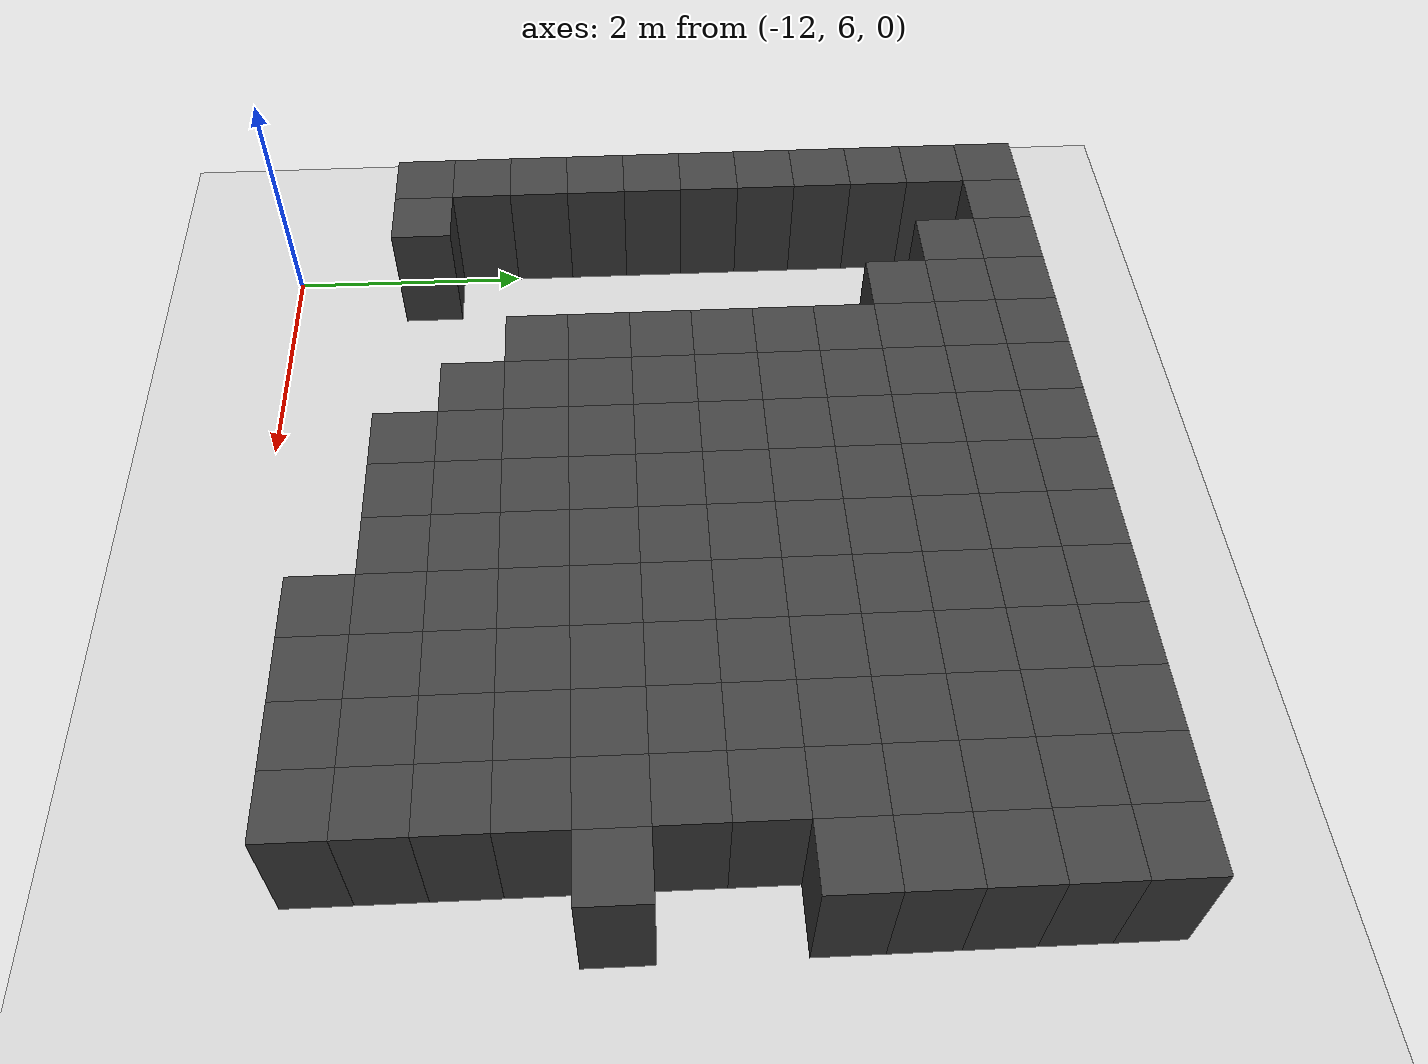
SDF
<sdf version="1.7">
 <world name="map_9082">
  <model name="ground_plane">
   <static>true</static>
   <link name="link">
    <collision name="collision">
     <geometry><plane><normal>0 0 1</normal><size>200 200</size></plane></geometry>
    </collision>
    <visual name="visual">
     <geometry><plane><normal>0 0 1</normal><size>200 200</size></plane></geometry>
     <material><ambient>0.8 0.8 0.8 1</ambient><diffuse>0.8 0.8 0.8 1</diffuse></material>
    </visual>
   </link>
  </model>
  <model name="maze_environment">
   <static>true</static>
   <link name="wall_0">
    <pose>-12.250 12.250 0.500 0 0 0</pose>
    <collision name="col"><geometry><box><size>0.5 0.5 1.0</size></box></geometry></collision>
    <visual name="vis">
     <geometry><box><size>0.5 0.5 1.0</size></box></geometry>
     <material><ambient>0.15 0.15 0.15 1</ambient><diffuse>0.25 0.25 0.25 1</diffuse></material>
    </visual>
   </link>
   <link name="wall_1">
    <pose>-11.750 12.250 0.500 0 0 0</pose>
    <collision name="col"><geometry><box><size>0.5 0.5 1.0</size></box></geometry></collision>
    <visual name="vis">
     <geometry><box><size>0.5 0.5 1.0</size></box></geometry>
     <material><ambient>0.15 0.15 0.15 1</ambient><diffuse>0.25 0.25 0.25 1</diffuse></material>
    </visual>
   </link>
   <link name="wall_2">
    <pose>-11.250 12.250 0.500 0 0 0</pose>
    <collision name="col"><geometry><box><size>0.5 0.5 1.0</size></box></geometry></collision>
    <visual name="vis">
     <geometry><box><size>0.5 0.5 1.0</size></box></geometry>
     <material><ambient>0.15 0.15 0.15 1</ambient><diffuse>0.25 0.25 0.25 1</diffuse></material>
    </visual>
   </link>
   <link name="wall_3">
    <pose>-10.750 12.250 0.500 0 0 0</pose>
    <collision name="col"><geometry><box><size>0.5 0.5 1.0</size></box></geometry></collision>
    <visual name="vis">
     <geometry><box><size>0.5 0.5 1.0</size></box></geometry>
     <material><ambient>0.15 0.15 0.15 1</ambient><diffuse>0.25 0.25 0.25 1</diffuse></material>
    </visual>
   </link>
   <link name="wall_4">
    <pose>-10.250 12.250 0.500 0 0 0</pose>
    <collision name="col"><geometry><box><size>0.5 0.5 1.0</size></box></geometry></collision>
    <visual name="vis">
     <geometry><box><size>0.5 0.5 1.0</size></box></geometry>
     <material><ambient>0.15 0.15 0.15 1</ambient><diffuse>0.25 0.25 0.25 1</diffuse></material>
    </visual>
   </link>
   <link name="wall_5">
    <pose>-9.750 12.250 0.500 0 0 0</pose>
    <collision name="col"><geometry><box><size>0.5 0.5 1.0</size></box></geometry></collision>
    <visual name="vis">
     <geometry><box><size>0.5 0.5 1.0</size></box></geometry>
     <material><ambient>0.15 0.15 0.15 1</ambient><diffuse>0.25 0.25 0.25 1</diffuse></material>
    </visual>
   </link>
   <link name="wall_6">
    <pose>-9.250 12.250 0.500 0 0 0</pose>
    <collision name="col"><geometry><box><size>0.5 0.5 1.0</size></box></geometry></collision>
    <visual name="vis">
     <geometry><box><size>0.5 0.5 1.0</size></box></geometry>
     <material><ambient>0.15 0.15 0.15 1</ambient><diffuse>0.25 0.25 0.25 1</diffuse></material>
    </visual>
   </link>
   <link name="wall_7">
    <pose>-8.750 12.250 0.500 0 0 0</pose>
    <collision name="col"><geometry><box><size>0.5 0.5 1.0</size></box></geometry></collision>
    <visual name="vis">
     <geometry><box><size>0.5 0.5 1.0</size></box></geometry>
     <material><ambient>0.15 0.15 0.15 1</ambient><diffuse>0.25 0.25 0.25 1</diffuse></material>
    </visual>
   </link>
   <link name="wall_8">
    <pose>-8.250 12.250 0.500 0 0 0</pose>
    <collision name="col"><geometry><box><size>0.5 0.5 1.0</size></box></geometry></collision>
    <visual name="vis">
     <geometry><box><size>0.5 0.5 1.0</size></box></geometry>
     <material><ambient>0.15 0.15 0.15 1</ambient><diffuse>0.25 0.25 0.25 1</diffuse></material>
    </visual>
   </link>
   <link name="wall_9">
    <pose>-7.750 12.250 0.500 0 0 0</pose>
    <collision name="col"><geometry><box><size>0.5 0.5 1.0</size></box></geometry></collision>
    <visual name="vis">
     <geometry><box><size>0.5 0.5 1.0</size></box></geometry>
     <material><ambient>0.15 0.15 0.15 1</ambient><diffuse>0.25 0.25 0.25 1</diffuse></material>
    </visual>
   </link>
   <link name="wall_10">
    <pose>-7.250 12.250 0.500 0 0 0</pose>
    <collision name="col"><geometry><box><size>0.5 0.5 1.0</size></box></geometry></collision>
    <visual name="vis">
     <geometry><box><size>0.5 0.5 1.0</size></box></geometry>
     <material><ambient>0.15 0.15 0.15 1</ambient><diffuse>0.25 0.25 0.25 1</diffuse></material>
    </visual>
   </link>
   <link name="wall_11">
    <pose>-6.750 12.250 0.500 0 0 0</pose>
    <collision name="col"><geometry><box><size>0.5 0.5 1.0</size></box></geometry></collision>
    <visual name="vis">
     <geometry><box><size>0.5 0.5 1.0</size></box></geometry>
     <material><ambient>0.15 0.15 0.15 1</ambient><diffuse>0.25 0.25 0.25 1</diffuse></material>
    </visual>
   </link>
   <link name="wall_12">
    <pose>-6.250 12.250 0.500 0 0 0</pose>
    <collision name="col"><geometry><box><size>0.5 0.5 1.0</size></box></geometry></collision>
    <visual name="vis">
     <geometry><box><size>0.5 0.5 1.0</size></box></geometry>
     <material><ambient>0.15 0.15 0.15 1</ambient><diffuse>0.25 0.25 0.25 1</diffuse></material>
    </visual>
   </link>
   <link name="wall_13">
    <pose>-5.750 12.250 0.500 0 0 0</pose>
    <collision name="col"><geometry><box><size>0.5 0.5 1.0</size></box></geometry></collision>
    <visual name="vis">
     <geometry><box><size>0.5 0.5 1.0</size></box></geometry>
     <material><ambient>0.15 0.15 0.15 1</ambient><diffuse>0.25 0.25 0.25 1</diffuse></material>
    </visual>
   </link>
   <link name="wall_50">
    <pose>-12.250 11.750 0.500 0 0 0</pose>
    <collision name="col"><geometry><box><size>0.5 0.5 1.0</size></box></geometry></collision>
    <visual name="vis">
     <geometry><box><size>0.5 0.5 1.0</size></box></geometry>
     <material><ambient>0.15 0.15 0.15 1</ambient><diffuse>0.25 0.25 0.25 1</diffuse></material>
    </visual>
   </link>
   <link name="wall_51">
    <pose>-11.250 11.750 0.500 0 0 0</pose>
    <collision name="col"><geometry><box><size>0.5 0.5 1.0</size></box></geometry></collision>
    <visual name="vis">
     <geometry><box><size>0.5 0.5 1.0</size></box></geometry>
     <material><ambient>0.15 0.15 0.15 1</ambient><diffuse>0.25 0.25 0.25 1</diffuse></material>
    </visual>
   </link>
   <link name="wall_52">
    <pose>-10.750 11.750 0.500 0 0 0</pose>
    <collision name="col"><geometry><box><size>0.5 0.5 1.0</size></box></geometry></collision>
    <visual name="vis">
     <geometry><box><size>0.5 0.5 1.0</size></box></geometry>
     <material><ambient>0.15 0.15 0.15 1</ambient><diffuse>0.25 0.25 0.25 1</diffuse></material>
    </visual>
   </link>
   <link name="wall_53">
    <pose>-10.250 11.750 0.500 0 0 0</pose>
    <collision name="col"><geometry><box><size>0.5 0.5 1.0</size></box></geometry></collision>
    <visual name="vis">
     <geometry><box><size>0.5 0.5 1.0</size></box></geometry>
     <material><ambient>0.15 0.15 0.15 1</ambient><diffuse>0.25 0.25 0.25 1</diffuse></material>
    </visual>
   </link>
   <link name="wall_54">
    <pose>-9.750 11.750 0.500 0 0 0</pose>
    <collision name="col"><geometry><box><size>0.5 0.5 1.0</size></box></geometry></collision>
    <visual name="vis">
     <geometry><box><size>0.5 0.5 1.0</size></box></geometry>
     <material><ambient>0.15 0.15 0.15 1</ambient><diffuse>0.25 0.25 0.25 1</diffuse></material>
    </visual>
   </link>
   <link name="wall_55">
    <pose>-9.250 11.750 0.500 0 0 0</pose>
    <collision name="col"><geometry><box><size>0.5 0.5 1.0</size></box></geometry></collision>
    <visual name="vis">
     <geometry><box><size>0.5 0.5 1.0</size></box></geometry>
     <material><ambient>0.15 0.15 0.15 1</ambient><diffuse>0.25 0.25 0.25 1</diffuse></material>
    </visual>
   </link>
   <link name="wall_56">
    <pose>-8.750 11.750 0.500 0 0 0</pose>
    <collision name="col"><geometry><box><size>0.5 0.5 1.0</size></box></geometry></collision>
    <visual name="vis">
     <geometry><box><size>0.5 0.5 1.0</size></box></geometry>
     <material><ambient>0.15 0.15 0.15 1</ambient><diffuse>0.25 0.25 0.25 1</diffuse></material>
    </visual>
   </link>
   <link name="wall_57">
    <pose>-8.250 11.750 0.500 0 0 0</pose>
    <collision name="col"><geometry><box><size>0.5 0.5 1.0</size></box></geometry></collision>
    <visual name="vis">
     <geometry><box><size>0.5 0.5 1.0</size></box></geometry>
     <material><ambient>0.15 0.15 0.15 1</ambient><diffuse>0.25 0.25 0.25 1</diffuse></material>
    </visual>
   </link>
   <link name="wall_58">
    <pose>-7.750 11.750 0.500 0 0 0</pose>
    <collision name="col"><geometry><box><size>0.5 0.5 1.0</size></box></geometry></collision>
    <visual name="vis">
     <geometry><box><size>0.5 0.5 1.0</size></box></geometry>
     <material><ambient>0.15 0.15 0.15 1</ambient><diffuse>0.25 0.25 0.25 1</diffuse></material>
    </visual>
   </link>
   <link name="wall_59">
    <pose>-7.250 11.750 0.500 0 0 0</pose>
    <collision name="col"><geometry><box><size>0.5 0.5 1.0</size></box></geometry></collision>
    <visual name="vis">
     <geometry><box><size>0.5 0.5 1.0</size></box></geometry>
     <material><ambient>0.15 0.15 0.15 1</ambient><diffuse>0.25 0.25 0.25 1</diffuse></material>
    </visual>
   </link>
   <link name="wall_60">
    <pose>-6.750 11.750 0.500 0 0 0</pose>
    <collision name="col"><geometry><box><size>0.5 0.5 1.0</size></box></geometry></collision>
    <visual name="vis">
     <geometry><box><size>0.5 0.5 1.0</size></box></geometry>
     <material><ambient>0.15 0.15 0.15 1</ambient><diffuse>0.25 0.25 0.25 1</diffuse></material>
    </visual>
   </link>
   <link name="wall_61">
    <pose>-6.250 11.750 0.500 0 0 0</pose>
    <collision name="col"><geometry><box><size>0.5 0.5 1.0</size></box></geometry></collision>
    <visual name="vis">
     <geometry><box><size>0.5 0.5 1.0</size></box></geometry>
     <material><ambient>0.15 0.15 0.15 1</ambient><diffuse>0.25 0.25 0.25 1</diffuse></material>
    </visual>
   </link>
   <link name="wall_62">
    <pose>-5.750 11.750 0.500 0 0 0</pose>
    <collision name="col"><geometry><box><size>0.5 0.5 1.0</size></box></geometry></collision>
    <visual name="vis">
     <geometry><box><size>0.5 0.5 1.0</size></box></geometry>
     <material><ambient>0.15 0.15 0.15 1</ambient><diffuse>0.25 0.25 0.25 1</diffuse></material>
    </visual>
   </link>
   <link name="wall_97">
    <pose>-12.250 11.250 0.500 0 0 0</pose>
    <collision name="col"><geometry><box><size>0.5 0.5 1.0</size></box></geometry></collision>
    <visual name="vis">
     <geometry><box><size>0.5 0.5 1.0</size></box></geometry>
     <material><ambient>0.15 0.15 0.15 1</ambient><diffuse>0.25 0.25 0.25 1</diffuse></material>
    </visual>
   </link>
   <link name="wall_98">
    <pose>-10.750 11.250 0.500 0 0 0</pose>
    <collision name="col"><geometry><box><size>0.5 0.5 1.0</size></box></geometry></collision>
    <visual name="vis">
     <geometry><box><size>0.5 0.5 1.0</size></box></geometry>
     <material><ambient>0.15 0.15 0.15 1</ambient><diffuse>0.25 0.25 0.25 1</diffuse></material>
    </visual>
   </link>
   <link name="wall_99">
    <pose>-10.250 11.250 0.500 0 0 0</pose>
    <collision name="col"><geometry><box><size>0.5 0.5 1.0</size></box></geometry></collision>
    <visual name="vis">
     <geometry><box><size>0.5 0.5 1.0</size></box></geometry>
     <material><ambient>0.15 0.15 0.15 1</ambient><diffuse>0.25 0.25 0.25 1</diffuse></material>
    </visual>
   </link>
   <link name="wall_100">
    <pose>-9.750 11.250 0.500 0 0 0</pose>
    <collision name="col"><geometry><box><size>0.5 0.5 1.0</size></box></geometry></collision>
    <visual name="vis">
     <geometry><box><size>0.5 0.5 1.0</size></box></geometry>
     <material><ambient>0.15 0.15 0.15 1</ambient><diffuse>0.25 0.25 0.25 1</diffuse></material>
    </visual>
   </link>
   <link name="wall_101">
    <pose>-9.250 11.250 0.500 0 0 0</pose>
    <collision name="col"><geometry><box><size>0.5 0.5 1.0</size></box></geometry></collision>
    <visual name="vis">
     <geometry><box><size>0.5 0.5 1.0</size></box></geometry>
     <material><ambient>0.15 0.15 0.15 1</ambient><diffuse>0.25 0.25 0.25 1</diffuse></material>
    </visual>
   </link>
   <link name="wall_102">
    <pose>-8.750 11.250 0.500 0 0 0</pose>
    <collision name="col"><geometry><box><size>0.5 0.5 1.0</size></box></geometry></collision>
    <visual name="vis">
     <geometry><box><size>0.5 0.5 1.0</size></box></geometry>
     <material><ambient>0.15 0.15 0.15 1</ambient><diffuse>0.25 0.25 0.25 1</diffuse></material>
    </visual>
   </link>
   <link name="wall_103">
    <pose>-8.250 11.250 0.500 0 0 0</pose>
    <collision name="col"><geometry><box><size>0.5 0.5 1.0</size></box></geometry></collision>
    <visual name="vis">
     <geometry><box><size>0.5 0.5 1.0</size></box></geometry>
     <material><ambient>0.15 0.15 0.15 1</ambient><diffuse>0.25 0.25 0.25 1</diffuse></material>
    </visual>
   </link>
   <link name="wall_104">
    <pose>-7.750 11.250 0.500 0 0 0</pose>
    <collision name="col"><geometry><box><size>0.5 0.5 1.0</size></box></geometry></collision>
    <visual name="vis">
     <geometry><box><size>0.5 0.5 1.0</size></box></geometry>
     <material><ambient>0.15 0.15 0.15 1</ambient><diffuse>0.25 0.25 0.25 1</diffuse></material>
    </visual>
   </link>
   <link name="wall_105">
    <pose>-7.250 11.250 0.500 0 0 0</pose>
    <collision name="col"><geometry><box><size>0.5 0.5 1.0</size></box></geometry></collision>
    <visual name="vis">
     <geometry><box><size>0.5 0.5 1.0</size></box></geometry>
     <material><ambient>0.15 0.15 0.15 1</ambient><diffuse>0.25 0.25 0.25 1</diffuse></material>
    </visual>
   </link>
   <link name="wall_106">
    <pose>-6.750 11.250 0.500 0 0 0</pose>
    <collision name="col"><geometry><box><size>0.5 0.5 1.0</size></box></geometry></collision>
    <visual name="vis">
     <geometry><box><size>0.5 0.5 1.0</size></box></geometry>
     <material><ambient>0.15 0.15 0.15 1</ambient><diffuse>0.25 0.25 0.25 1</diffuse></material>
    </visual>
   </link>
   <link name="wall_107">
    <pose>-6.250 11.250 0.500 0 0 0</pose>
    <collision name="col"><geometry><box><size>0.5 0.5 1.0</size></box></geometry></collision>
    <visual name="vis">
     <geometry><box><size>0.5 0.5 1.0</size></box></geometry>
     <material><ambient>0.15 0.15 0.15 1</ambient><diffuse>0.25 0.25 0.25 1</diffuse></material>
    </visual>
   </link>
   <link name="wall_108">
    <pose>-5.750 11.250 0.500 0 0 0</pose>
    <collision name="col"><geometry><box><size>0.5 0.5 1.0</size></box></geometry></collision>
    <visual name="vis">
     <geometry><box><size>0.5 0.5 1.0</size></box></geometry>
     <material><ambient>0.15 0.15 0.15 1</ambient><diffuse>0.25 0.25 0.25 1</diffuse></material>
    </visual>
   </link>
   <link name="wall_131">
    <pose>-12.250 10.750 0.500 0 0 0</pose>
    <collision name="col"><geometry><box><size>0.5 0.5 1.0</size></box></geometry></collision>
    <visual name="vis">
     <geometry><box><size>0.5 0.5 1.0</size></box></geometry>
     <material><ambient>0.15 0.15 0.15 1</ambient><diffuse>0.25 0.25 0.25 1</diffuse></material>
    </visual>
   </link>
   <link name="wall_132">
    <pose>-10.250 10.750 0.500 0 0 0</pose>
    <collision name="col"><geometry><box><size>0.5 0.5 1.0</size></box></geometry></collision>
    <visual name="vis">
     <geometry><box><size>0.5 0.5 1.0</size></box></geometry>
     <material><ambient>0.15 0.15 0.15 1</ambient><diffuse>0.25 0.25 0.25 1</diffuse></material>
    </visual>
   </link>
   <link name="wall_133">
    <pose>-9.750 10.750 0.500 0 0 0</pose>
    <collision name="col"><geometry><box><size>0.5 0.5 1.0</size></box></geometry></collision>
    <visual name="vis">
     <geometry><box><size>0.5 0.5 1.0</size></box></geometry>
     <material><ambient>0.15 0.15 0.15 1</ambient><diffuse>0.25 0.25 0.25 1</diffuse></material>
    </visual>
   </link>
   <link name="wall_134">
    <pose>-9.250 10.750 0.500 0 0 0</pose>
    <collision name="col"><geometry><box><size>0.5 0.5 1.0</size></box></geometry></collision>
    <visual name="vis">
     <geometry><box><size>0.5 0.5 1.0</size></box></geometry>
     <material><ambient>0.15 0.15 0.15 1</ambient><diffuse>0.25 0.25 0.25 1</diffuse></material>
    </visual>
   </link>
   <link name="wall_135">
    <pose>-8.750 10.750 0.500 0 0 0</pose>
    <collision name="col"><geometry><box><size>0.5 0.5 1.0</size></box></geometry></collision>
    <visual name="vis">
     <geometry><box><size>0.5 0.5 1.0</size></box></geometry>
     <material><ambient>0.15 0.15 0.15 1</ambient><diffuse>0.25 0.25 0.25 1</diffuse></material>
    </visual>
   </link>
   <link name="wall_136">
    <pose>-8.250 10.750 0.500 0 0 0</pose>
    <collision name="col"><geometry><box><size>0.5 0.5 1.0</size></box></geometry></collision>
    <visual name="vis">
     <geometry><box><size>0.5 0.5 1.0</size></box></geometry>
     <material><ambient>0.15 0.15 0.15 1</ambient><diffuse>0.25 0.25 0.25 1</diffuse></material>
    </visual>
   </link>
   <link name="wall_137">
    <pose>-7.750 10.750 0.500 0 0 0</pose>
    <collision name="col"><geometry><box><size>0.5 0.5 1.0</size></box></geometry></collision>
    <visual name="vis">
     <geometry><box><size>0.5 0.5 1.0</size></box></geometry>
     <material><ambient>0.15 0.15 0.15 1</ambient><diffuse>0.25 0.25 0.25 1</diffuse></material>
    </visual>
   </link>
   <link name="wall_138">
    <pose>-7.250 10.750 0.500 0 0 0</pose>
    <collision name="col"><geometry><box><size>0.5 0.5 1.0</size></box></geometry></collision>
    <visual name="vis">
     <geometry><box><size>0.5 0.5 1.0</size></box></geometry>
     <material><ambient>0.15 0.15 0.15 1</ambient><diffuse>0.25 0.25 0.25 1</diffuse></material>
    </visual>
   </link>
   <link name="wall_139">
    <pose>-6.750 10.750 0.500 0 0 0</pose>
    <collision name="col"><geometry><box><size>0.5 0.5 1.0</size></box></geometry></collision>
    <visual name="vis">
     <geometry><box><size>0.5 0.5 1.0</size></box></geometry>
     <material><ambient>0.15 0.15 0.15 1</ambient><diffuse>0.25 0.25 0.25 1</diffuse></material>
    </visual>
   </link>
   <link name="wall_140">
    <pose>-6.250 10.750 0.500 0 0 0</pose>
    <collision name="col"><geometry><box><size>0.5 0.5 1.0</size></box></geometry></collision>
    <visual name="vis">
     <geometry><box><size>0.5 0.5 1.0</size></box></geometry>
     <material><ambient>0.15 0.15 0.15 1</ambient><diffuse>0.25 0.25 0.25 1</diffuse></material>
    </visual>
   </link>
   <link name="wall_141">
    <pose>-5.750 10.750 0.500 0 0 0</pose>
    <collision name="col"><geometry><box><size>0.5 0.5 1.0</size></box></geometry></collision>
    <visual name="vis">
     <geometry><box><size>0.5 0.5 1.0</size></box></geometry>
     <material><ambient>0.15 0.15 0.15 1</ambient><diffuse>0.25 0.25 0.25 1</diffuse></material>
    </visual>
   </link>
   <link name="wall_154">
    <pose>-12.250 10.250 0.500 0 0 0</pose>
    <collision name="col"><geometry><box><size>0.5 0.5 1.0</size></box></geometry></collision>
    <visual name="vis">
     <geometry><box><size>0.5 0.5 1.0</size></box></geometry>
     <material><ambient>0.15 0.15 0.15 1</ambient><diffuse>0.25 0.25 0.25 1</diffuse></material>
    </visual>
   </link>
   <link name="wall_155">
    <pose>-10.250 10.250 0.500 0 0 0</pose>
    <collision name="col"><geometry><box><size>0.5 0.5 1.0</size></box></geometry></collision>
    <visual name="vis">
     <geometry><box><size>0.5 0.5 1.0</size></box></geometry>
     <material><ambient>0.15 0.15 0.15 1</ambient><diffuse>0.25 0.25 0.25 1</diffuse></material>
    </visual>
   </link>
   <link name="wall_156">
    <pose>-9.750 10.250 0.500 0 0 0</pose>
    <collision name="col"><geometry><box><size>0.5 0.5 1.0</size></box></geometry></collision>
    <visual name="vis">
     <geometry><box><size>0.5 0.5 1.0</size></box></geometry>
     <material><ambient>0.15 0.15 0.15 1</ambient><diffuse>0.25 0.25 0.25 1</diffuse></material>
    </visual>
   </link>
   <link name="wall_157">
    <pose>-9.250 10.250 0.500 0 0 0</pose>
    <collision name="col"><geometry><box><size>0.5 0.5 1.0</size></box></geometry></collision>
    <visual name="vis">
     <geometry><box><size>0.5 0.5 1.0</size></box></geometry>
     <material><ambient>0.15 0.15 0.15 1</ambient><diffuse>0.25 0.25 0.25 1</diffuse></material>
    </visual>
   </link>
   <link name="wall_158">
    <pose>-8.750 10.250 0.500 0 0 0</pose>
    <collision name="col"><geometry><box><size>0.5 0.5 1.0</size></box></geometry></collision>
    <visual name="vis">
     <geometry><box><size>0.5 0.5 1.0</size></box></geometry>
     <material><ambient>0.15 0.15 0.15 1</ambient><diffuse>0.25 0.25 0.25 1</diffuse></material>
    </visual>
   </link>
   <link name="wall_159">
    <pose>-8.250 10.250 0.500 0 0 0</pose>
    <collision name="col"><geometry><box><size>0.5 0.5 1.0</size></box></geometry></collision>
    <visual name="vis">
     <geometry><box><size>0.5 0.5 1.0</size></box></geometry>
     <material><ambient>0.15 0.15 0.15 1</ambient><diffuse>0.25 0.25 0.25 1</diffuse></material>
    </visual>
   </link>
   <link name="wall_160">
    <pose>-7.750 10.250 0.500 0 0 0</pose>
    <collision name="col"><geometry><box><size>0.5 0.5 1.0</size></box></geometry></collision>
    <visual name="vis">
     <geometry><box><size>0.5 0.5 1.0</size></box></geometry>
     <material><ambient>0.15 0.15 0.15 1</ambient><diffuse>0.25 0.25 0.25 1</diffuse></material>
    </visual>
   </link>
   <link name="wall_161">
    <pose>-7.250 10.250 0.500 0 0 0</pose>
    <collision name="col"><geometry><box><size>0.5 0.5 1.0</size></box></geometry></collision>
    <visual name="vis">
     <geometry><box><size>0.5 0.5 1.0</size></box></geometry>
     <material><ambient>0.15 0.15 0.15 1</ambient><diffuse>0.25 0.25 0.25 1</diffuse></material>
    </visual>
   </link>
   <link name="wall_162">
    <pose>-6.750 10.250 0.500 0 0 0</pose>
    <collision name="col"><geometry><box><size>0.5 0.5 1.0</size></box></geometry></collision>
    <visual name="vis">
     <geometry><box><size>0.5 0.5 1.0</size></box></geometry>
     <material><ambient>0.15 0.15 0.15 1</ambient><diffuse>0.25 0.25 0.25 1</diffuse></material>
    </visual>
   </link>
   <link name="wall_163">
    <pose>-6.250 10.250 0.500 0 0 0</pose>
    <collision name="col"><geometry><box><size>0.5 0.5 1.0</size></box></geometry></collision>
    <visual name="vis">
     <geometry><box><size>0.5 0.5 1.0</size></box></geometry>
     <material><ambient>0.15 0.15 0.15 1</ambient><diffuse>0.25 0.25 0.25 1</diffuse></material>
    </visual>
   </link>
   <link name="wall_164">
    <pose>-5.750 10.250 0.500 0 0 0</pose>
    <collision name="col"><geometry><box><size>0.5 0.5 1.0</size></box></geometry></collision>
    <visual name="vis">
     <geometry><box><size>0.5 0.5 1.0</size></box></geometry>
     <material><ambient>0.15 0.15 0.15 1</ambient><diffuse>0.25 0.25 0.25 1</diffuse></material>
    </visual>
   </link>
   <link name="wall_174">
    <pose>-12.250 9.750 0.500 0 0 0</pose>
    <collision name="col"><geometry><box><size>0.5 0.5 1.0</size></box></geometry></collision>
    <visual name="vis">
     <geometry><box><size>0.5 0.5 1.0</size></box></geometry>
     <material><ambient>0.15 0.15 0.15 1</ambient><diffuse>0.25 0.25 0.25 1</diffuse></material>
    </visual>
   </link>
   <link name="wall_175">
    <pose>-10.250 9.750 0.500 0 0 0</pose>
    <collision name="col"><geometry><box><size>0.5 0.5 1.0</size></box></geometry></collision>
    <visual name="vis">
     <geometry><box><size>0.5 0.5 1.0</size></box></geometry>
     <material><ambient>0.15 0.15 0.15 1</ambient><diffuse>0.25 0.25 0.25 1</diffuse></material>
    </visual>
   </link>
   <link name="wall_176">
    <pose>-9.750 9.750 0.500 0 0 0</pose>
    <collision name="col"><geometry><box><size>0.5 0.5 1.0</size></box></geometry></collision>
    <visual name="vis">
     <geometry><box><size>0.5 0.5 1.0</size></box></geometry>
     <material><ambient>0.15 0.15 0.15 1</ambient><diffuse>0.25 0.25 0.25 1</diffuse></material>
    </visual>
   </link>
   <link name="wall_177">
    <pose>-9.250 9.750 0.500 0 0 0</pose>
    <collision name="col"><geometry><box><size>0.5 0.5 1.0</size></box></geometry></collision>
    <visual name="vis">
     <geometry><box><size>0.5 0.5 1.0</size></box></geometry>
     <material><ambient>0.15 0.15 0.15 1</ambient><diffuse>0.25 0.25 0.25 1</diffuse></material>
    </visual>
   </link>
   <link name="wall_178">
    <pose>-8.750 9.750 0.500 0 0 0</pose>
    <collision name="col"><geometry><box><size>0.5 0.5 1.0</size></box></geometry></collision>
    <visual name="vis">
     <geometry><box><size>0.5 0.5 1.0</size></box></geometry>
     <material><ambient>0.15 0.15 0.15 1</ambient><diffuse>0.25 0.25 0.25 1</diffuse></material>
    </visual>
   </link>
   <link name="wall_179">
    <pose>-8.250 9.750 0.500 0 0 0</pose>
    <collision name="col"><geometry><box><size>0.5 0.5 1.0</size></box></geometry></collision>
    <visual name="vis">
     <geometry><box><size>0.5 0.5 1.0</size></box></geometry>
     <material><ambient>0.15 0.15 0.15 1</ambient><diffuse>0.25 0.25 0.25 1</diffuse></material>
    </visual>
   </link>
   <link name="wall_180">
    <pose>-7.750 9.750 0.500 0 0 0</pose>
    <collision name="col"><geometry><box><size>0.5 0.5 1.0</size></box></geometry></collision>
    <visual name="vis">
     <geometry><box><size>0.5 0.5 1.0</size></box></geometry>
     <material><ambient>0.15 0.15 0.15 1</ambient><diffuse>0.25 0.25 0.25 1</diffuse></material>
    </visual>
   </link>
   <link name="wall_181">
    <pose>-7.250 9.750 0.500 0 0 0</pose>
    <collision name="col"><geometry><box><size>0.5 0.5 1.0</size></box></geometry></collision>
    <visual name="vis">
     <geometry><box><size>0.5 0.5 1.0</size></box></geometry>
     <material><ambient>0.15 0.15 0.15 1</ambient><diffuse>0.25 0.25 0.25 1</diffuse></material>
    </visual>
   </link>
   <link name="wall_182">
    <pose>-6.750 9.750 0.500 0 0 0</pose>
    <collision name="col"><geometry><box><size>0.5 0.5 1.0</size></box></geometry></collision>
    <visual name="vis">
     <geometry><box><size>0.5 0.5 1.0</size></box></geometry>
     <material><ambient>0.15 0.15 0.15 1</ambient><diffuse>0.25 0.25 0.25 1</diffuse></material>
    </visual>
   </link>
   <link name="wall_183">
    <pose>-6.250 9.750 0.500 0 0 0</pose>
    <collision name="col"><geometry><box><size>0.5 0.5 1.0</size></box></geometry></collision>
    <visual name="vis">
     <geometry><box><size>0.5 0.5 1.0</size></box></geometry>
     <material><ambient>0.15 0.15 0.15 1</ambient><diffuse>0.25 0.25 0.25 1</diffuse></material>
    </visual>
   </link>
   <link name="wall_190">
    <pose>-12.250 9.250 0.500 0 0 0</pose>
    <collision name="col"><geometry><box><size>0.5 0.5 1.0</size></box></geometry></collision>
    <visual name="vis">
     <geometry><box><size>0.5 0.5 1.0</size></box></geometry>
     <material><ambient>0.15 0.15 0.15 1</ambient><diffuse>0.25 0.25 0.25 1</diffuse></material>
    </visual>
   </link>
   <link name="wall_191">
    <pose>-10.250 9.250 0.500 0 0 0</pose>
    <collision name="col"><geometry><box><size>0.5 0.5 1.0</size></box></geometry></collision>
    <visual name="vis">
     <geometry><box><size>0.5 0.5 1.0</size></box></geometry>
     <material><ambient>0.15 0.15 0.15 1</ambient><diffuse>0.25 0.25 0.25 1</diffuse></material>
    </visual>
   </link>
   <link name="wall_192">
    <pose>-9.750 9.250 0.500 0 0 0</pose>
    <collision name="col"><geometry><box><size>0.5 0.5 1.0</size></box></geometry></collision>
    <visual name="vis">
     <geometry><box><size>0.5 0.5 1.0</size></box></geometry>
     <material><ambient>0.15 0.15 0.15 1</ambient><diffuse>0.25 0.25 0.25 1</diffuse></material>
    </visual>
   </link>
   <link name="wall_193">
    <pose>-9.250 9.250 0.500 0 0 0</pose>
    <collision name="col"><geometry><box><size>0.5 0.5 1.0</size></box></geometry></collision>
    <visual name="vis">
     <geometry><box><size>0.5 0.5 1.0</size></box></geometry>
     <material><ambient>0.15 0.15 0.15 1</ambient><diffuse>0.25 0.25 0.25 1</diffuse></material>
    </visual>
   </link>
   <link name="wall_194">
    <pose>-8.750 9.250 0.500 0 0 0</pose>
    <collision name="col"><geometry><box><size>0.5 0.5 1.0</size></box></geometry></collision>
    <visual name="vis">
     <geometry><box><size>0.5 0.5 1.0</size></box></geometry>
     <material><ambient>0.15 0.15 0.15 1</ambient><diffuse>0.25 0.25 0.25 1</diffuse></material>
    </visual>
   </link>
   <link name="wall_195">
    <pose>-8.250 9.250 0.500 0 0 0</pose>
    <collision name="col"><geometry><box><size>0.5 0.5 1.0</size></box></geometry></collision>
    <visual name="vis">
     <geometry><box><size>0.5 0.5 1.0</size></box></geometry>
     <material><ambient>0.15 0.15 0.15 1</ambient><diffuse>0.25 0.25 0.25 1</diffuse></material>
    </visual>
   </link>
   <link name="wall_196">
    <pose>-7.750 9.250 0.500 0 0 0</pose>
    <collision name="col"><geometry><box><size>0.5 0.5 1.0</size></box></geometry></collision>
    <visual name="vis">
     <geometry><box><size>0.5 0.5 1.0</size></box></geometry>
     <material><ambient>0.15 0.15 0.15 1</ambient><diffuse>0.25 0.25 0.25 1</diffuse></material>
    </visual>
   </link>
   <link name="wall_197">
    <pose>-7.250 9.250 0.500 0 0 0</pose>
    <collision name="col"><geometry><box><size>0.5 0.5 1.0</size></box></geometry></collision>
    <visual name="vis">
     <geometry><box><size>0.5 0.5 1.0</size></box></geometry>
     <material><ambient>0.15 0.15 0.15 1</ambient><diffuse>0.25 0.25 0.25 1</diffuse></material>
    </visual>
   </link>
   <link name="wall_198">
    <pose>-6.750 9.250 0.500 0 0 0</pose>
    <collision name="col"><geometry><box><size>0.5 0.5 1.0</size></box></geometry></collision>
    <visual name="vis">
     <geometry><box><size>0.5 0.5 1.0</size></box></geometry>
     <material><ambient>0.15 0.15 0.15 1</ambient><diffuse>0.25 0.25 0.25 1</diffuse></material>
    </visual>
   </link>
   <link name="wall_199">
    <pose>-6.250 9.250 0.500 0 0 0</pose>
    <collision name="col"><geometry><box><size>0.5 0.5 1.0</size></box></geometry></collision>
    <visual name="vis">
     <geometry><box><size>0.5 0.5 1.0</size></box></geometry>
     <material><ambient>0.15 0.15 0.15 1</ambient><diffuse>0.25 0.25 0.25 1</diffuse></material>
    </visual>
   </link>
   <link name="wall_202">
    <pose>-12.250 8.750 0.500 0 0 0</pose>
    <collision name="col"><geometry><box><size>0.5 0.5 1.0</size></box></geometry></collision>
    <visual name="vis">
     <geometry><box><size>0.5 0.5 1.0</size></box></geometry>
     <material><ambient>0.15 0.15 0.15 1</ambient><diffuse>0.25 0.25 0.25 1</diffuse></material>
    </visual>
   </link>
   <link name="wall_203">
    <pose>-10.250 8.750 0.500 0 0 0</pose>
    <collision name="col"><geometry><box><size>0.5 0.5 1.0</size></box></geometry></collision>
    <visual name="vis">
     <geometry><box><size>0.5 0.5 1.0</size></box></geometry>
     <material><ambient>0.15 0.15 0.15 1</ambient><diffuse>0.25 0.25 0.25 1</diffuse></material>
    </visual>
   </link>
   <link name="wall_204">
    <pose>-9.750 8.750 0.500 0 0 0</pose>
    <collision name="col"><geometry><box><size>0.5 0.5 1.0</size></box></geometry></collision>
    <visual name="vis">
     <geometry><box><size>0.5 0.5 1.0</size></box></geometry>
     <material><ambient>0.15 0.15 0.15 1</ambient><diffuse>0.25 0.25 0.25 1</diffuse></material>
    </visual>
   </link>
   <link name="wall_205">
    <pose>-9.250 8.750 0.500 0 0 0</pose>
    <collision name="col"><geometry><box><size>0.5 0.5 1.0</size></box></geometry></collision>
    <visual name="vis">
     <geometry><box><size>0.5 0.5 1.0</size></box></geometry>
     <material><ambient>0.15 0.15 0.15 1</ambient><diffuse>0.25 0.25 0.25 1</diffuse></material>
    </visual>
   </link>
   <link name="wall_206">
    <pose>-8.750 8.750 0.500 0 0 0</pose>
    <collision name="col"><geometry><box><size>0.5 0.5 1.0</size></box></geometry></collision>
    <visual name="vis">
     <geometry><box><size>0.5 0.5 1.0</size></box></geometry>
     <material><ambient>0.15 0.15 0.15 1</ambient><diffuse>0.25 0.25 0.25 1</diffuse></material>
    </visual>
   </link>
   <link name="wall_207">
    <pose>-8.250 8.750 0.500 0 0 0</pose>
    <collision name="col"><geometry><box><size>0.5 0.5 1.0</size></box></geometry></collision>
    <visual name="vis">
     <geometry><box><size>0.5 0.5 1.0</size></box></geometry>
     <material><ambient>0.15 0.15 0.15 1</ambient><diffuse>0.25 0.25 0.25 1</diffuse></material>
    </visual>
   </link>
   <link name="wall_208">
    <pose>-7.750 8.750 0.500 0 0 0</pose>
    <collision name="col"><geometry><box><size>0.5 0.5 1.0</size></box></geometry></collision>
    <visual name="vis">
     <geometry><box><size>0.5 0.5 1.0</size></box></geometry>
     <material><ambient>0.15 0.15 0.15 1</ambient><diffuse>0.25 0.25 0.25 1</diffuse></material>
    </visual>
   </link>
   <link name="wall_209">
    <pose>-7.250 8.750 0.500 0 0 0</pose>
    <collision name="col"><geometry><box><size>0.5 0.5 1.0</size></box></geometry></collision>
    <visual name="vis">
     <geometry><box><size>0.5 0.5 1.0</size></box></geometry>
     <material><ambient>0.15 0.15 0.15 1</ambient><diffuse>0.25 0.25 0.25 1</diffuse></material>
    </visual>
   </link>
   <link name="wall_210">
    <pose>-6.750 8.750 0.500 0 0 0</pose>
    <collision name="col"><geometry><box><size>0.5 0.5 1.0</size></box></geometry></collision>
    <visual name="vis">
     <geometry><box><size>0.5 0.5 1.0</size></box></geometry>
     <material><ambient>0.15 0.15 0.15 1</ambient><diffuse>0.25 0.25 0.25 1</diffuse></material>
    </visual>
   </link>
   <link name="wall_211">
    <pose>-6.250 8.750 0.500 0 0 0</pose>
    <collision name="col"><geometry><box><size>0.5 0.5 1.0</size></box></geometry></collision>
    <visual name="vis">
     <geometry><box><size>0.5 0.5 1.0</size></box></geometry>
     <material><ambient>0.15 0.15 0.15 1</ambient><diffuse>0.25 0.25 0.25 1</diffuse></material>
    </visual>
   </link>
   <link name="wall_212">
    <pose>-5.750 8.750 0.500 0 0 0</pose>
    <collision name="col"><geometry><box><size>0.5 0.5 1.0</size></box></geometry></collision>
    <visual name="vis">
     <geometry><box><size>0.5 0.5 1.0</size></box></geometry>
     <material><ambient>0.15 0.15 0.15 1</ambient><diffuse>0.25 0.25 0.25 1</diffuse></material>
    </visual>
   </link>
   <link name="wall_215">
    <pose>-12.250 8.250 0.500 0 0 0</pose>
    <collision name="col"><geometry><box><size>0.5 0.5 1.0</size></box></geometry></collision>
    <visual name="vis">
     <geometry><box><size>0.5 0.5 1.0</size></box></geometry>
     <material><ambient>0.15 0.15 0.15 1</ambient><diffuse>0.25 0.25 0.25 1</diffuse></material>
    </visual>
   </link>
   <link name="wall_216">
    <pose>-10.250 8.250 0.500 0 0 0</pose>
    <collision name="col"><geometry><box><size>0.5 0.5 1.0</size></box></geometry></collision>
    <visual name="vis">
     <geometry><box><size>0.5 0.5 1.0</size></box></geometry>
     <material><ambient>0.15 0.15 0.15 1</ambient><diffuse>0.25 0.25 0.25 1</diffuse></material>
    </visual>
   </link>
   <link name="wall_217">
    <pose>-9.750 8.250 0.500 0 0 0</pose>
    <collision name="col"><geometry><box><size>0.5 0.5 1.0</size></box></geometry></collision>
    <visual name="vis">
     <geometry><box><size>0.5 0.5 1.0</size></box></geometry>
     <material><ambient>0.15 0.15 0.15 1</ambient><diffuse>0.25 0.25 0.25 1</diffuse></material>
    </visual>
   </link>
   <link name="wall_218">
    <pose>-9.250 8.250 0.500 0 0 0</pose>
    <collision name="col"><geometry><box><size>0.5 0.5 1.0</size></box></geometry></collision>
    <visual name="vis">
     <geometry><box><size>0.5 0.5 1.0</size></box></geometry>
     <material><ambient>0.15 0.15 0.15 1</ambient><diffuse>0.25 0.25 0.25 1</diffuse></material>
    </visual>
   </link>
   <link name="wall_219">
    <pose>-8.750 8.250 0.500 0 0 0</pose>
    <collision name="col"><geometry><box><size>0.5 0.5 1.0</size></box></geometry></collision>
    <visual name="vis">
     <geometry><box><size>0.5 0.5 1.0</size></box></geometry>
     <material><ambient>0.15 0.15 0.15 1</ambient><diffuse>0.25 0.25 0.25 1</diffuse></material>
    </visual>
   </link>
   <link name="wall_220">
    <pose>-8.250 8.250 0.500 0 0 0</pose>
    <collision name="col"><geometry><box><size>0.5 0.5 1.0</size></box></geometry></collision>
    <visual name="vis">
     <geometry><box><size>0.5 0.5 1.0</size></box></geometry>
     <material><ambient>0.15 0.15 0.15 1</ambient><diffuse>0.25 0.25 0.25 1</diffuse></material>
    </visual>
   </link>
   <link name="wall_221">
    <pose>-7.750 8.250 0.500 0 0 0</pose>
    <collision name="col"><geometry><box><size>0.5 0.5 1.0</size></box></geometry></collision>
    <visual name="vis">
     <geometry><box><size>0.5 0.5 1.0</size></box></geometry>
     <material><ambient>0.15 0.15 0.15 1</ambient><diffuse>0.25 0.25 0.25 1</diffuse></material>
    </visual>
   </link>
   <link name="wall_222">
    <pose>-7.250 8.250 0.500 0 0 0</pose>
    <collision name="col"><geometry><box><size>0.5 0.5 1.0</size></box></geometry></collision>
    <visual name="vis">
     <geometry><box><size>0.5 0.5 1.0</size></box></geometry>
     <material><ambient>0.15 0.15 0.15 1</ambient><diffuse>0.25 0.25 0.25 1</diffuse></material>
    </visual>
   </link>
   <link name="wall_223">
    <pose>-6.750 8.250 0.500 0 0 0</pose>
    <collision name="col"><geometry><box><size>0.5 0.5 1.0</size></box></geometry></collision>
    <visual name="vis">
     <geometry><box><size>0.5 0.5 1.0</size></box></geometry>
     <material><ambient>0.15 0.15 0.15 1</ambient><diffuse>0.25 0.25 0.25 1</diffuse></material>
    </visual>
   </link>
   <link name="wall_224">
    <pose>-6.250 8.250 0.500 0 0 0</pose>
    <collision name="col"><geometry><box><size>0.5 0.5 1.0</size></box></geometry></collision>
    <visual name="vis">
     <geometry><box><size>0.5 0.5 1.0</size></box></geometry>
     <material><ambient>0.15 0.15 0.15 1</ambient><diffuse>0.25 0.25 0.25 1</diffuse></material>
    </visual>
   </link>
   <link name="wall_229">
    <pose>-12.250 7.750 0.500 0 0 0</pose>
    <collision name="col"><geometry><box><size>0.5 0.5 1.0</size></box></geometry></collision>
    <visual name="vis">
     <geometry><box><size>0.5 0.5 1.0</size></box></geometry>
     <material><ambient>0.15 0.15 0.15 1</ambient><diffuse>0.25 0.25 0.25 1</diffuse></material>
    </visual>
   </link>
   <link name="wall_230">
    <pose>-9.750 7.750 0.500 0 0 0</pose>
    <collision name="col"><geometry><box><size>0.5 0.5 1.0</size></box></geometry></collision>
    <visual name="vis">
     <geometry><box><size>0.5 0.5 1.0</size></box></geometry>
     <material><ambient>0.15 0.15 0.15 1</ambient><diffuse>0.25 0.25 0.25 1</diffuse></material>
    </visual>
   </link>
   <link name="wall_231">
    <pose>-9.250 7.750 0.500 0 0 0</pose>
    <collision name="col"><geometry><box><size>0.5 0.5 1.0</size></box></geometry></collision>
    <visual name="vis">
     <geometry><box><size>0.5 0.5 1.0</size></box></geometry>
     <material><ambient>0.15 0.15 0.15 1</ambient><diffuse>0.25 0.25 0.25 1</diffuse></material>
    </visual>
   </link>
   <link name="wall_232">
    <pose>-8.750 7.750 0.500 0 0 0</pose>
    <collision name="col"><geometry><box><size>0.5 0.5 1.0</size></box></geometry></collision>
    <visual name="vis">
     <geometry><box><size>0.5 0.5 1.0</size></box></geometry>
     <material><ambient>0.15 0.15 0.15 1</ambient><diffuse>0.25 0.25 0.25 1</diffuse></material>
    </visual>
   </link>
   <link name="wall_233">
    <pose>-8.250 7.750 0.500 0 0 0</pose>
    <collision name="col"><geometry><box><size>0.5 0.5 1.0</size></box></geometry></collision>
    <visual name="vis">
     <geometry><box><size>0.5 0.5 1.0</size></box></geometry>
     <material><ambient>0.15 0.15 0.15 1</ambient><diffuse>0.25 0.25 0.25 1</diffuse></material>
    </visual>
   </link>
   <link name="wall_234">
    <pose>-7.750 7.750 0.500 0 0 0</pose>
    <collision name="col"><geometry><box><size>0.5 0.5 1.0</size></box></geometry></collision>
    <visual name="vis">
     <geometry><box><size>0.5 0.5 1.0</size></box></geometry>
     <material><ambient>0.15 0.15 0.15 1</ambient><diffuse>0.25 0.25 0.25 1</diffuse></material>
    </visual>
   </link>
   <link name="wall_235">
    <pose>-7.250 7.750 0.500 0 0 0</pose>
    <collision name="col"><geometry><box><size>0.5 0.5 1.0</size></box></geometry></collision>
    <visual name="vis">
     <geometry><box><size>0.5 0.5 1.0</size></box></geometry>
     <material><ambient>0.15 0.15 0.15 1</ambient><diffuse>0.25 0.25 0.25 1</diffuse></material>
    </visual>
   </link>
   <link name="wall_236">
    <pose>-6.750 7.750 0.500 0 0 0</pose>
    <collision name="col"><geometry><box><size>0.5 0.5 1.0</size></box></geometry></collision>
    <visual name="vis">
     <geometry><box><size>0.5 0.5 1.0</size></box></geometry>
     <material><ambient>0.15 0.15 0.15 1</ambient><diffuse>0.25 0.25 0.25 1</diffuse></material>
    </visual>
   </link>
   <link name="wall_237">
    <pose>-6.250 7.750 0.500 0 0 0</pose>
    <collision name="col"><geometry><box><size>0.5 0.5 1.0</size></box></geometry></collision>
    <visual name="vis">
     <geometry><box><size>0.5 0.5 1.0</size></box></geometry>
     <material><ambient>0.15 0.15 0.15 1</ambient><diffuse>0.25 0.25 0.25 1</diffuse></material>
    </visual>
   </link>
   <link name="wall_246">
    <pose>-12.250 7.250 0.500 0 0 0</pose>
    <collision name="col"><geometry><box><size>0.5 0.5 1.0</size></box></geometry></collision>
    <visual name="vis">
     <geometry><box><size>0.5 0.5 1.0</size></box></geometry>
     <material><ambient>0.15 0.15 0.15 1</ambient><diffuse>0.25 0.25 0.25 1</diffuse></material>
    </visual>
   </link>
   <link name="wall_247">
    <pose>-11.750 7.250 0.500 0 0 0</pose>
    <collision name="col"><geometry><box><size>0.5 0.5 1.0</size></box></geometry></collision>
    <visual name="vis">
     <geometry><box><size>0.5 0.5 1.0</size></box></geometry>
     <material><ambient>0.15 0.15 0.15 1</ambient><diffuse>0.25 0.25 0.25 1</diffuse></material>
    </visual>
   </link>
   <link name="wall_248">
    <pose>-9.250 7.250 0.500 0 0 0</pose>
    <collision name="col"><geometry><box><size>0.5 0.5 1.0</size></box></geometry></collision>
    <visual name="vis">
     <geometry><box><size>0.5 0.5 1.0</size></box></geometry>
     <material><ambient>0.15 0.15 0.15 1</ambient><diffuse>0.25 0.25 0.25 1</diffuse></material>
    </visual>
   </link>
   <link name="wall_249">
    <pose>-8.750 7.250 0.500 0 0 0</pose>
    <collision name="col"><geometry><box><size>0.5 0.5 1.0</size></box></geometry></collision>
    <visual name="vis">
     <geometry><box><size>0.5 0.5 1.0</size></box></geometry>
     <material><ambient>0.15 0.15 0.15 1</ambient><diffuse>0.25 0.25 0.25 1</diffuse></material>
    </visual>
   </link>
   <link name="wall_250">
    <pose>-8.250 7.250 0.500 0 0 0</pose>
    <collision name="col"><geometry><box><size>0.5 0.5 1.0</size></box></geometry></collision>
    <visual name="vis">
     <geometry><box><size>0.5 0.5 1.0</size></box></geometry>
     <material><ambient>0.15 0.15 0.15 1</ambient><diffuse>0.25 0.25 0.25 1</diffuse></material>
    </visual>
   </link>
   <link name="wall_251">
    <pose>-7.750 7.250 0.500 0 0 0</pose>
    <collision name="col"><geometry><box><size>0.5 0.5 1.0</size></box></geometry></collision>
    <visual name="vis">
     <geometry><box><size>0.5 0.5 1.0</size></box></geometry>
     <material><ambient>0.15 0.15 0.15 1</ambient><diffuse>0.25 0.25 0.25 1</diffuse></material>
    </visual>
   </link>
   <link name="wall_252">
    <pose>-7.250 7.250 0.500 0 0 0</pose>
    <collision name="col"><geometry><box><size>0.5 0.5 1.0</size></box></geometry></collision>
    <visual name="vis">
     <geometry><box><size>0.5 0.5 1.0</size></box></geometry>
     <material><ambient>0.15 0.15 0.15 1</ambient><diffuse>0.25 0.25 0.25 1</diffuse></material>
    </visual>
   </link>
   <link name="wall_253">
    <pose>-6.750 7.250 0.500 0 0 0</pose>
    <collision name="col"><geometry><box><size>0.5 0.5 1.0</size></box></geometry></collision>
    <visual name="vis">
     <geometry><box><size>0.5 0.5 1.0</size></box></geometry>
     <material><ambient>0.15 0.15 0.15 1</ambient><diffuse>0.25 0.25 0.25 1</diffuse></material>
    </visual>
   </link>
   <link name="wall_254">
    <pose>-6.250 7.250 0.500 0 0 0</pose>
    <collision name="col"><geometry><box><size>0.5 0.5 1.0</size></box></geometry></collision>
    <visual name="vis">
     <geometry><box><size>0.5 0.5 1.0</size></box></geometry>
     <material><ambient>0.15 0.15 0.15 1</ambient><diffuse>0.25 0.25 0.25 1</diffuse></material>
    </visual>
   </link>
   <link name="wall_269">
    <pose>-7.750 6.750 0.500 0 0 0</pose>
    <collision name="col"><geometry><box><size>0.5 0.5 1.0</size></box></geometry></collision>
    <visual name="vis">
     <geometry><box><size>0.5 0.5 1.0</size></box></geometry>
     <material><ambient>0.15 0.15 0.15 1</ambient><diffuse>0.25 0.25 0.25 1</diffuse></material>
    </visual>
   </link>
   <link name="wall_270">
    <pose>-7.250 6.750 0.500 0 0 0</pose>
    <collision name="col"><geometry><box><size>0.5 0.5 1.0</size></box></geometry></collision>
    <visual name="vis">
     <geometry><box><size>0.5 0.5 1.0</size></box></geometry>
     <material><ambient>0.15 0.15 0.15 1</ambient><diffuse>0.25 0.25 0.25 1</diffuse></material>
    </visual>
   </link>
   <link name="wall_271">
    <pose>-6.750 6.750 0.500 0 0 0</pose>
    <collision name="col"><geometry><box><size>0.5 0.5 1.0</size></box></geometry></collision>
    <visual name="vis">
     <geometry><box><size>0.5 0.5 1.0</size></box></geometry>
     <material><ambient>0.15 0.15 0.15 1</ambient><diffuse>0.25 0.25 0.25 1</diffuse></material>
    </visual>
   </link>
   <link name="wall_272">
    <pose>-6.250 6.750 0.500 0 0 0</pose>
    <collision name="col"><geometry><box><size>0.5 0.5 1.0</size></box></geometry></collision>
    <visual name="vis">
     <geometry><box><size>0.5 0.5 1.0</size></box></geometry>
     <material><ambient>0.15 0.15 0.15 1</ambient><diffuse>0.25 0.25 0.25 1</diffuse></material>
    </visual>
   </link>
   <link name="start_zone">
    <pose>-11.750 11.750 0.005 0 0 0</pose>
    <visual name="vis">
     <geometry><box><size>0.45 0.45 0.01</size></box></geometry>
     <material>
      <ambient>0.0 1.0 0.0 1</ambient>
      <diffuse>0.0 1.0 0.0 1</diffuse>
      <emissive>0.00 0.60 0.00 1</emissive>
     </material>
    </visual>
   </link>
  </model>
 </world>
</sdf>
